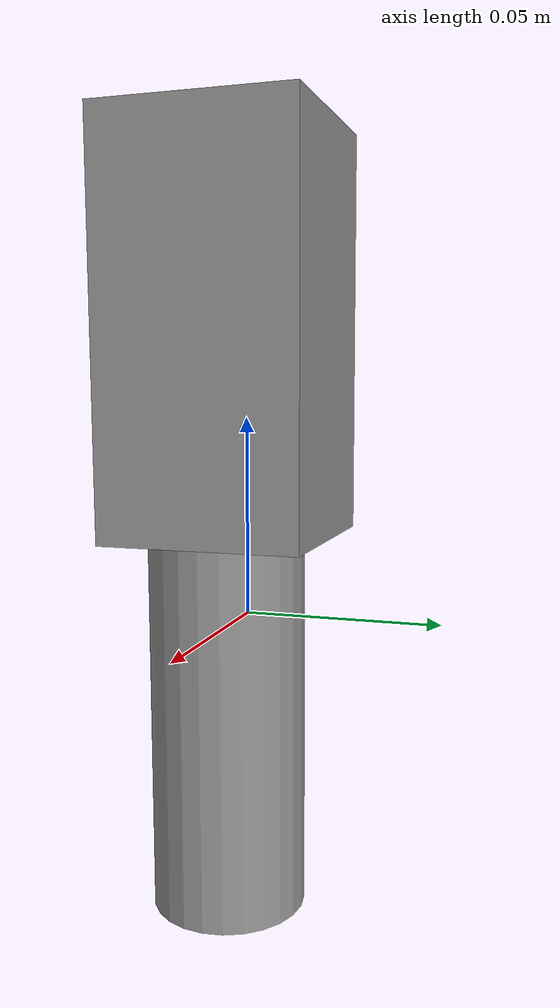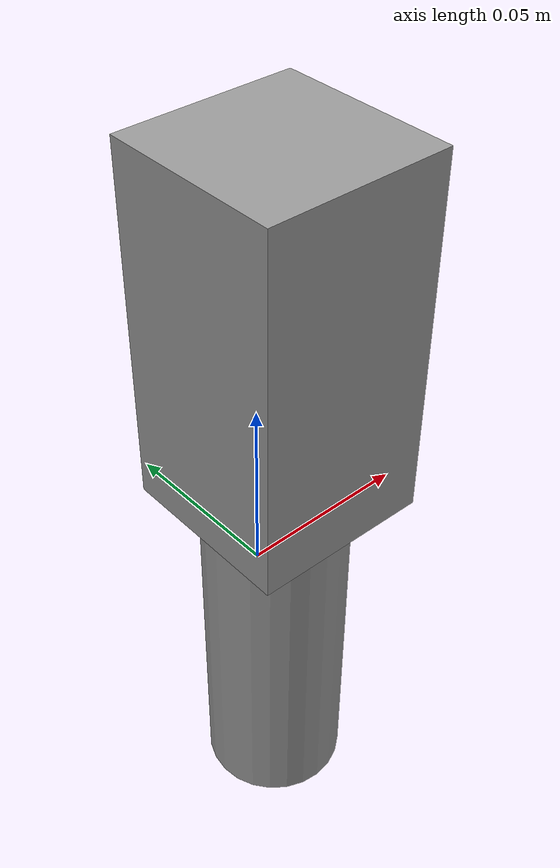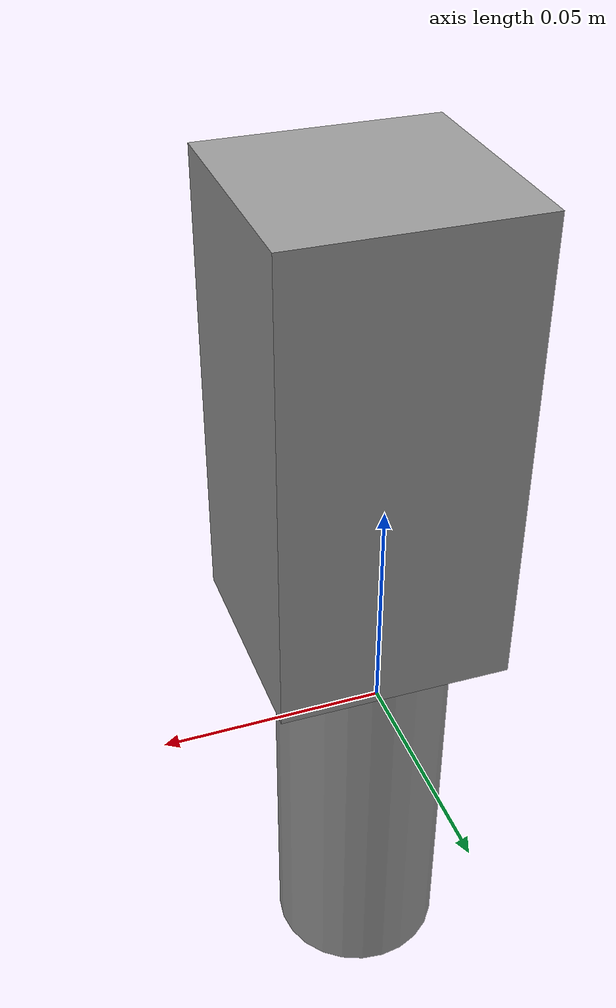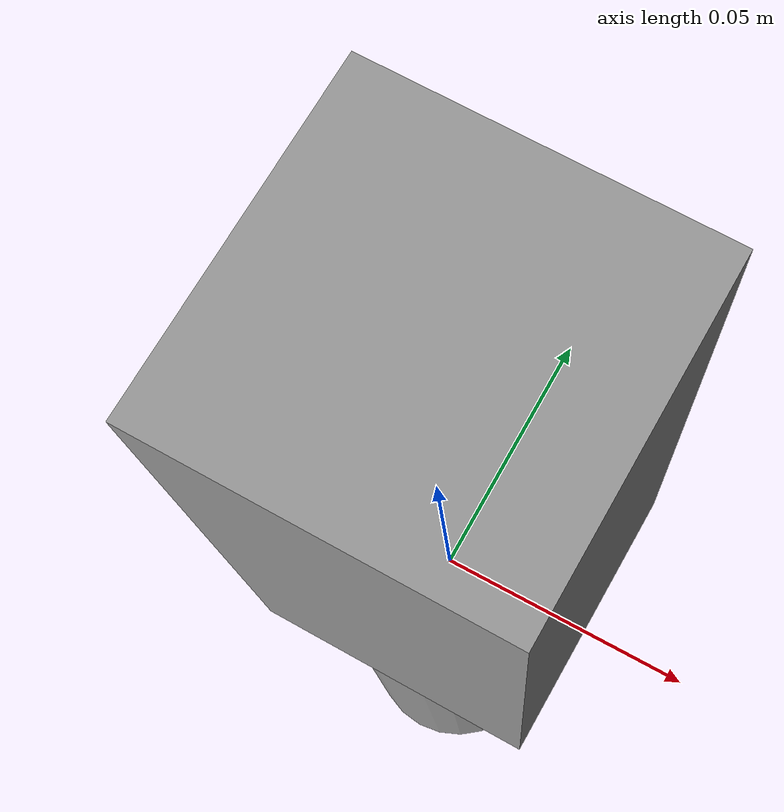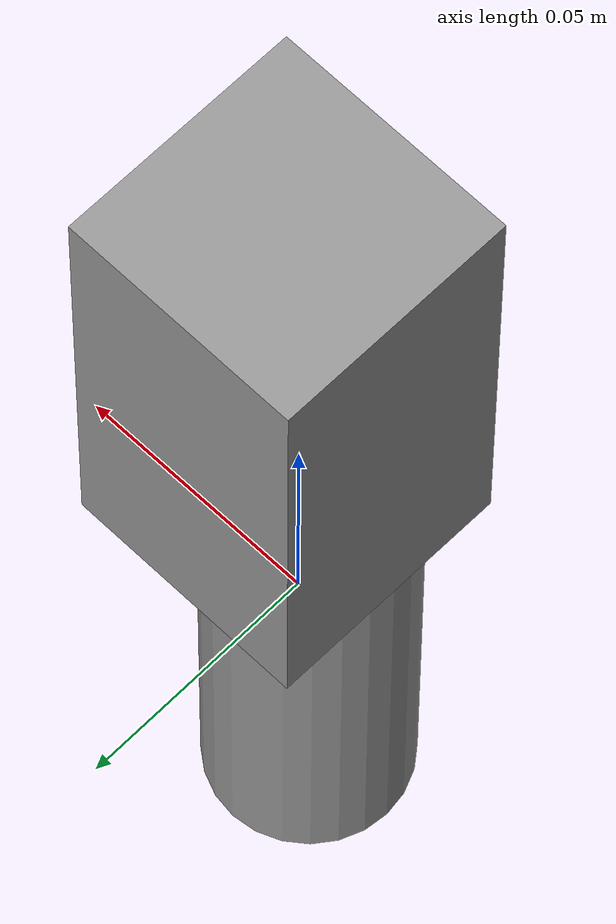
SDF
<?xml version='1.0'?>
<sdf version='1.7'>
  <model name='Camera'>
    <link name='link_0'>
      <inertial>
        <mass>0.339292</mass>
        <inertia>
          <ixx>0.00031667</ixx>
          <ixy>0</ixy>
          <ixz>0</ixz>
          <iyy>0.00031667</iyy>
          <iyz>0</iyz>
          <izz>6.786e-05</izz>
        </inertia>
        <pose>0 0 0 0 -0 0</pose>
      </inertial>
      <pose>0.001833 -0.005091 -0.02793 0 -0 0</pose>
      <gravity>1</gravity>
      <self_collide>0</self_collide>
      <kinematic>0</kinematic>
      <enable_wind>0</enable_wind>
      <visual name='visual'>
        <pose>0 0 0 0 -0 0</pose>
        <geometry>
          <cylinder>
            <radius>0.02</radius>
            <length>0.1</length>
          </cylinder>
        </geometry>
        <material>
          <lighting>1</lighting>
          <script>
            <uri>file://media/materials/scripts/gazebo.material</uri>
            <name>Gazebo/Grey</name>
          </script>
          <shader type='pixel'>
            <normal_map>__default__</normal_map>
          </shader>
          <ambient>0.3 0.3 0.3 1</ambient>
          <diffuse>0.7 0.7 0.7 1</diffuse>
          <specular>0.01 0.01 0.01 1</specular>
          <emissive>0 0 0 1</emissive>
        </material>
        <transparency>0</transparency>
        <cast_shadows>1</cast_shadows>
      </visual>
      <collision name='collision'>
        <laser_retro>0</laser_retro>
        <max_contacts>10</max_contacts>
        <pose>0 0 0 0 -0 0</pose>
        <geometry>
          <cylinder>
            <radius>0.02</radius>
            <length>0.1</length>
          </cylinder>
        </geometry>
        <surface>
          <friction>
            <ode>
              <mu>1</mu>
              <mu2>1</mu2>
              <fdir1>0 0 0</fdir1>
              <slip1>0</slip1>
              <slip2>0</slip2>
            </ode>
            <torsional>
              <coefficient>1</coefficient>
              <patch_radius>0</patch_radius>
              <surface_radius>0</surface_radius>
              <use_patch_radius>1</use_patch_radius>
              <ode>
                <slip>0</slip>
              </ode>
            </torsional>
          </friction>
          <bounce>
            <restitution_coefficient>0</restitution_coefficient>
            <threshold>1e+06</threshold>
          </bounce>
          <contact>
            <collide_without_contact>0</collide_without_contact>
            <collide_without_contact_bitmask>1</collide_without_contact_bitmask>
            <collide_bitmask>1</collide_bitmask>
            <ode>
              <soft_cfm>0</soft_cfm>
              <soft_erp>0.2</soft_erp>
              <kp>1e+13</kp>
              <kd>1</kd>
              <max_vel>0.01</max_vel>
              <min_depth>0</min_depth>
            </ode>
            <bullet>
              <split_impulse>1</split_impulse>
              <split_impulse_penetration_threshold>-0.01</split_impulse_penetration_threshold>
              <soft_cfm>0</soft_cfm>
              <soft_erp>0.2</soft_erp>
              <kp>1e+13</kp>
              <kd>1</kd>
            </bullet>
          </contact>
        </surface>
      </collision>
    </link>
    <link name='link_1'>
      <inertial>
        <mass>0.29375</mass>
        <inertia>
          <ixx>0.00030599</ixx>
          <ixy>0</ixy>
          <ixz>0</ixz>
          <iyy>0.00030599</iyy>
          <iyz>0</iyz>
          <izz>0.0001224</izz>
        </inertia>
        <pose>0 0 0 0 -0 0</pose>
      </inertial>
      <sensor name='camera' type='camera'>
        <always_on>1</always_on>
        <visualize>1</visualize>
        <update_rate>30</update_rate>
        <camera name='prius_cam'>
          <horizontal_fov>1.0856</horizontal_fov>
          <image>
            <width>1280</width>
            <height>720</height>
            <format>R8G8B8</format>
          </image>
          <clip>
            <near>0.03</near>
            <far>100</far>
          </clip>
          <noise>
            <type>gaussian</type>
            <mean>0</mean>
            <stddev>0.007</stddev>
          </noise>
        </camera>
        <plugin name='camera_driver' filename='libgazebo_ros_camera.so'/>
      </sensor>
      <pose>0.005139 -0.002221 0.07072 0 0 -0.008529</pose>
      <gravity>1</gravity>
      <self_collide>0</self_collide>
      <kinematic>0</kinematic>
      <enable_wind>0</enable_wind>
      <visual name='visual'>
        <pose>0 0 0 0 -0 0</pose>
        <geometry>
          <box>
            <size>0.05 0.05 0.1</size>
          </box>
        </geometry>
        <material>
          <lighting>1</lighting>
          <script>
            <uri>file://media/materials/scripts/gazebo.material</uri>
            <name>Gazebo/Grey</name>
          </script>
          <shader type='pixel'>
            <normal_map>__default__</normal_map>
          </shader>
          <ambient>0.3 0.3 0.3 1</ambient>
          <diffuse>0.7 0.7 0.7 1</diffuse>
          <specular>0.01 0.01 0.01 1</specular>
          <emissive>0 0 0 1</emissive>
        </material>
        <transparency>0</transparency>
        <cast_shadows>1</cast_shadows>
      </visual>
      <collision name='collision'>
        <laser_retro>0</laser_retro>
        <max_contacts>10</max_contacts>
        <pose>0 0 0 0 -0 0</pose>
        <geometry>
          <box>
            <size>0.05 0.05 0.1</size>
          </box>
        </geometry>
        <surface>
          <friction>
            <ode>
              <mu>1</mu>
              <mu2>1</mu2>
              <fdir1>0 0 0</fdir1>
              <slip1>0</slip1>
              <slip2>0</slip2>
            </ode>
            <torsional>
              <coefficient>1</coefficient>
              <patch_radius>0</patch_radius>
              <surface_radius>0</surface_radius>
              <use_patch_radius>1</use_patch_radius>
              <ode>
                <slip>0</slip>
              </ode>
            </torsional>
          </friction>
          <bounce>
            <restitution_coefficient>0</restitution_coefficient>
            <threshold>1e+06</threshold>
          </bounce>
          <contact>
            <collide_without_contact>0</collide_without_contact>
            <collide_without_contact_bitmask>1</collide_without_contact_bitmask>
            <collide_bitmask>1</collide_bitmask>
            <ode>
              <soft_cfm>0</soft_cfm>
              <soft_erp>0.2</soft_erp>
              <kp>1e+13</kp>
              <kd>1</kd>
              <max_vel>0.01</max_vel>
              <min_depth>0</min_depth>
            </ode>
            <bullet>
              <split_impulse>1</split_impulse>
              <split_impulse_penetration_threshold>-0.01</split_impulse_penetration_threshold>
              <soft_cfm>0</soft_cfm>
              <soft_erp>0.2</soft_erp>
              <kp>1e+13</kp>
              <kd>1</kd>
            </bullet>
          </contact>
        </surface>
      </collision>
    </link>
    <joint name='link_camera_original' type='fixed'>
      <parent>link_0</parent>
      <child>link_1</child>
      <pose>0 0 0 0 -0 0</pose>
      <physics>
        <ode>
          <limit>
            <cfm>0</cfm>
            <erp>0.2</erp>
          </limit>
          <suspension>
            <cfm>0</cfm>
            <erp>0.2</erp>
          </suspension>
        </ode>
      </physics>
    </joint>
    <static>0</static>
    <allow_auto_disable>1</allow_auto_disable>
  </model>
</sdf>
